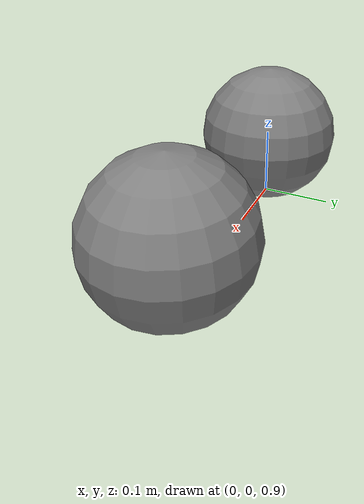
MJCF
<mujoco>
          <worldbody>
            <body name="f" pos="0 0 1">
              <freejoint/>
              <geom type="sphere" size="0.1" mass="1"/>
              <body name="b" pos="0.3 0 0">
                <joint type="ball"/>
                <geom type="sphere" size="0.1" mass="1"/>
              </body>
            </body>
          </worldbody>
        </mujoco>
